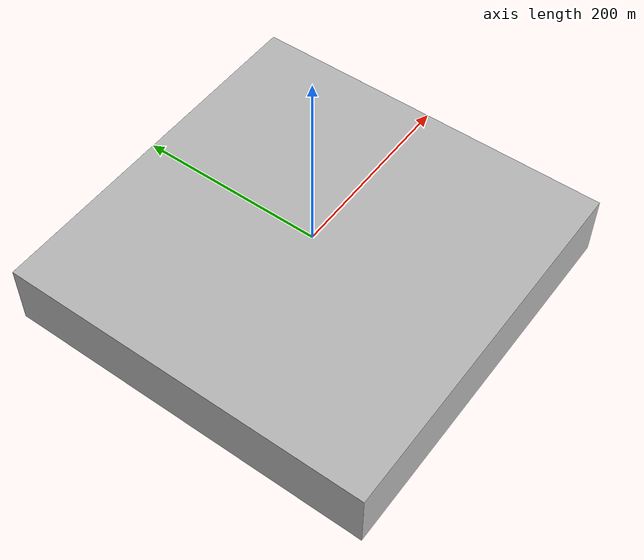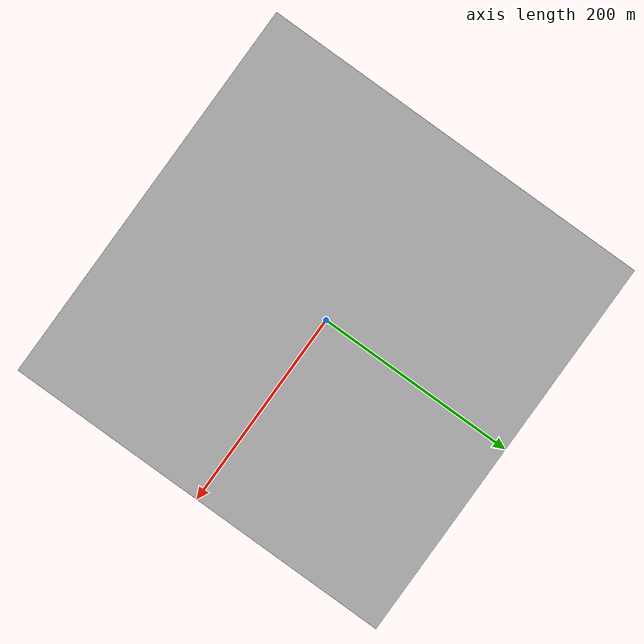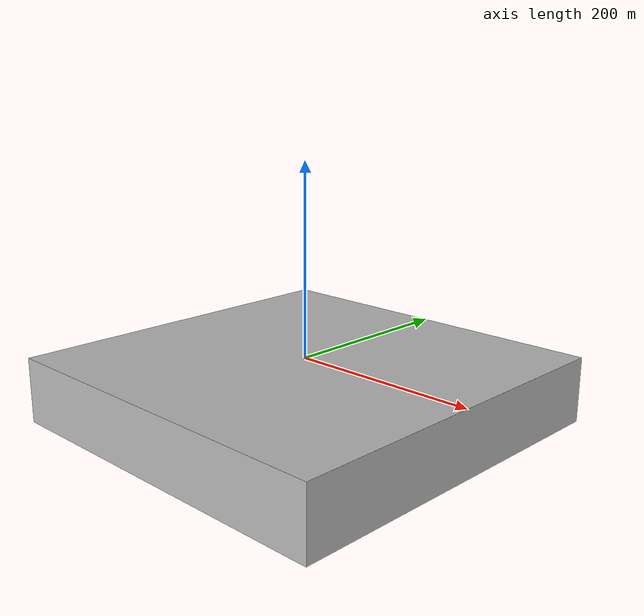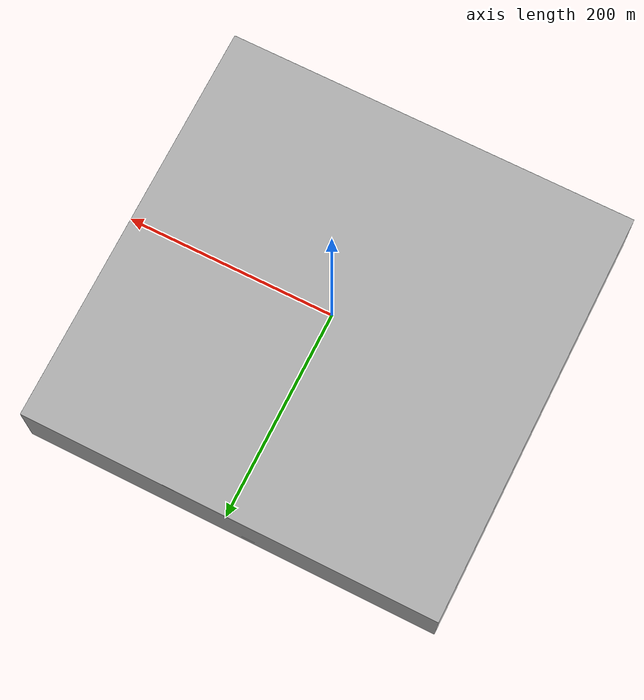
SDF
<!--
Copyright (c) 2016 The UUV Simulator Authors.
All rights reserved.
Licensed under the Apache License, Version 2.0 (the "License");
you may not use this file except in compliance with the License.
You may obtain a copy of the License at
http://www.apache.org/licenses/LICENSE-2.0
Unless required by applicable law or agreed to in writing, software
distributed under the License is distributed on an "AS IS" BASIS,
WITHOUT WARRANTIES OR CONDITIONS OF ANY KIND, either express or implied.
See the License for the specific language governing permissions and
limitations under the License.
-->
<sdf version="1.4">
 <world name="munkholmen">
  <physics name="default_physics" default="true" type="ode">
   <max_step_size>0.002</max_step_size>
   <real_time_factor>1</real_time_factor>
   <real_time_update_rate>500</real_time_update_rate>
   <ode><solver><type>quick</type><iters>50</iters><sor>1.2</sor></solver></ode>
  </physics>
  <scene>
   <ambient>0.01 0.01 0.01 1.0</ambient>
   <sky><clouds><speed>12</speed></clouds></sky>
   <shadows>1</shadows>
   <fog>
    <color>0.1 0.2 0.3 1.0</color>
    <type>linear</type>
    <density>0.1</density>
    <start>10</start>
    <end>40</end>
   </fog>
  </scene>
  <spherical_coordinates>
   <latitude_deg>63.4534333</latitude_deg>
   <longitude_deg>10.4055667</longitude_deg>
  </spherical_coordinates>
  <light type="directional" name="sun_diffuse_1">
   <pose>-200 -200 100 0 0 0</pose>
   <diffuse>0.6 0.6 0.6 1</diffuse>
   <specular>0 0 0 1</specular>
   <direction>-0.3 -0.3 -1</direction>
  </light>
  <light type="directional" name="sun_diffuse_2">
   <pose>-100 50 200 0 0 0</pose>
   <diffuse>0.6 0.6 0.6 1</diffuse>
   <specular>0 0 0 1</specular>
   <direction>-0.3 -0.3 -1</direction>
  </light>
  <light type="directional" name="sun_diffuse_3">
   <pose>-150 -130 50 0 0 0</pose>
   <diffuse>0.6 0.6 0.6 1</diffuse>
   <specular>0.2 0.2 0.2 1</specular>
   <direction>0.5 0.5 -1</direction>
  </light>
  <include><uri>model://herkules_seabed</uri></include>
  <plugin name="underwater_current_plugin" filename="libuuv_underwater_current_ros_plugin.so">
   <namespace>hydrodynamics</namespace>
   <constant_current>
    <topic>current_velocity</topic>
    <velocity><mean>0</mean><min>0</min><max>5</max><mu>0.0</mu><noiseAmp>0.0</noiseAmp></velocity>
    <horizontal_angle>
     <mean>0</mean>
     <min>-3.141592653589793238</min>
     <max>3.141592653589793238</max>
     <mu>0.0</mu>
     <noiseAmp>0.0</noiseAmp>
    </horizontal_angle>
    <vertical_angle>
     <mean>0</mean>
     <min>-3.141592653589793238</min>
     <max>3.141592653589793238</max>
     <mu>0.0</mu>
     <noiseAmp>0.0</noiseAmp>
    </vertical_angle>
   </constant_current>
  </plugin>
  <plugin name="sc_interface" filename="libuuv_sc_ros_interface_plugin.so"/>
 </world>
</sdf>

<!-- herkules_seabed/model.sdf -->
<sdf version="1.5">
  <model name="herkules_seabed">
    <static>true</static>
    <link name="seabed">
      <collision name="seabed">
        <pose>0 0 -60 0 0 0</pose>
        <geometry>
          <mesh>
            <uri>model://herkules_seabed/meshes/herkules_seabed.dae</uri>
            <scale>4.0 4.0 1.0</scale>
          </mesh>
        </geometry>
      </collision>

      <visual name="seabed">
        <cast_shadows>true</cast_shadows>
        <pose>0 0 -60 0 0 0</pose>
        <geometry>
          <mesh>
            <uri>model://herkules_seabed/meshes/herkules_seabed.dae</uri>
            <scale>4.0 4.0 1.0</scale>
          </mesh>
        </geometry>
        <material>
          <script>
            <uri>file://Media/materials/scripts/sand.material</uri>
            <name>UUVSimulator/SandAndStones</name>
          </script>
        </material>
      </visual>
    </link>

    <link name="ocean_link">
      <visual name="surface">
        <pose>0 0 0 0 0 0</pose>
        <cast_shadows>false</cast_shadows>
        <geometry>
          <box>
            <size>400 400 0.1</size>
          </box>
        </geometry>
        <material>
          <script>
            <uri>file://Media/materials/scripts/water.material</uri>
            <name>UUVSimulator/StaticWater</name>
          </script>
        </material>
      </visual>

      <visual name="bottom">
        <pose>0 0 -70.0 0 0 0</pose>
        <geometry>
          <box>
            <size>400 400 0.1</size>
          </box>
        </geometry>
        <material>
          <script>
            <uri>file://Media/materials/scripts/water.material</uri>
            <name>UUVSimulator/SeaWall</name>
          </script>
        </material>
      </visual>

      <visual name="north_wall">
        <pose>0 200 -35.0 0 0 0</pose>
        <geometry>
          <box>
            <size>400 0.1 70</size>
          </box>
        </geometry>
        <material>
          <script>
            <uri>file://Media/materials/scripts/water.material</uri>
            <name>UUVSimulator/SeaWall</name>
          </script>
        </material>
      </visual>

      <visual name="south_wall">
        <pose>0 -200 -35.0 0 0 0</pose>
        <geometry>
          <box>
            <size>400 0.1 70</size>
          </box>
        </geometry>
        <material>
          <script>
            <uri>file://Media/materials/scripts/water.material</uri>
            <name>UUVSimulator/SeaWall</name>
          </script>
        </material>
      </visual>

      <visual name="east_wall">
        <pose>200 0 -35.0 0 0 0</pose>
        <geometry>
          <box>
            <size>0.1 400 70</size>
          </box>
        </geometry>
        <material>
          <script>
            <uri>file://Media/materials/scripts/water.material</uri>
            <name>UUVSimulator/SeaWall</name>
          </script>
        </material>
      </visual>

      <visual name="west_wall">
        <pose>-200 0 -35.0 0 0 0</pose>
        <geometry>
          <box>
            <size>0.1 400 70</size>
          </box>
        </geometry>
        <material>
          <script>
            <uri>file://Media/materials/scripts/water.material</uri>
            <name>UUVSimulator/SeaWall</name>
          </script>
        </material>
      </visual>
    </link>
  </model>
</sdf>
